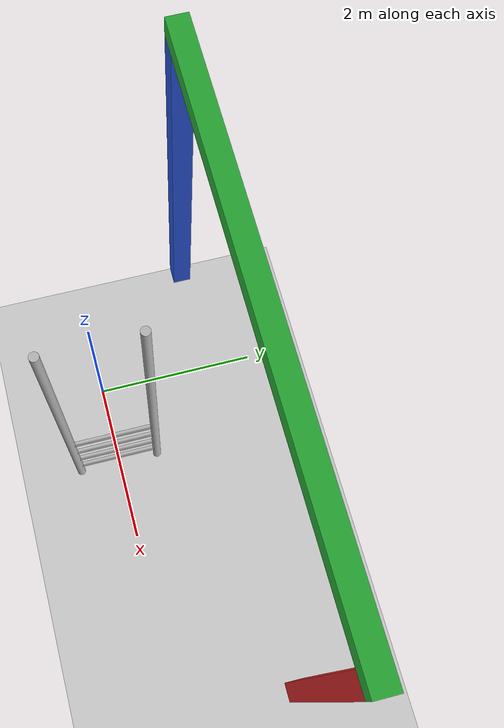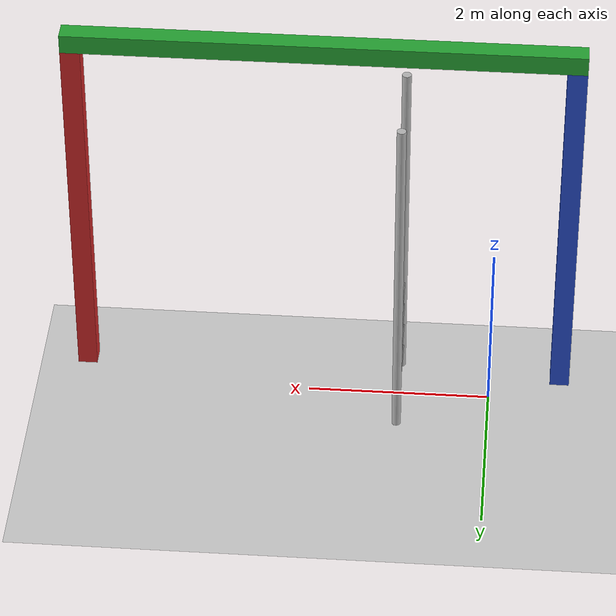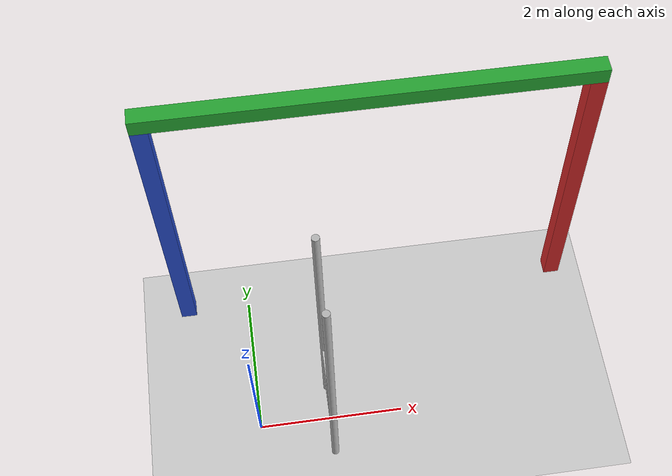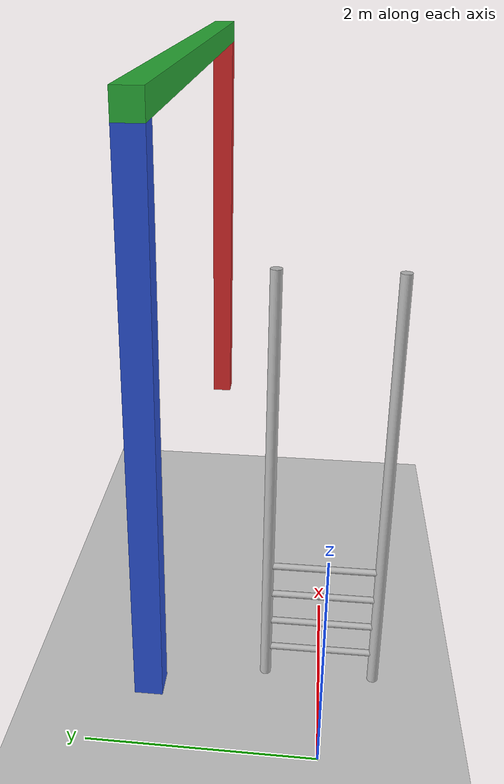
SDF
<sdf version="1.4">
 <world name="qual_task_4">
  <physics type="ode">
   <gravity>0 0 -9.81</gravity>
   <ode>
    <solver><type>quick</type><iters>50</iters><sor>1.4</sor></solver>
    <constraints>
     <cfm>0.0</cfm>
     <erp>0.2</erp>
     <contact_max_correcting_vel>100.0</contact_max_correcting_vel>
     <contact_surface_layer>0.0</contact_surface_layer>
    </constraints>
   </ode>
   <real_time_update_rate>1000</real_time_update_rate>
   <max_step_size>0.001</max_step_size>
  </physics>
  <scene><ambient>0.3 0.3 0.3 1.0</ambient></scene>
  <light type="directional" name="sun">
   <pose>0 0 100 0 0 0</pose>
   <diffuse>0.9 0.9 0.9 1</diffuse>
   <specular>0.1 0.1 0.1 1</specular>
   <attenuation>
    <range>1000</range>
    <constant>0.9</constant>
    <linear>0.01</linear>
    <quadratic>0.001</quadratic>
   </attenuation>
   <direction>-0.2 0.0 -1.0</direction>
  </light>
  <light type="point" name="light_bulb">
   <cast_shadows>false</cast_shadows>
   <pose>7.5 -7 5 0 0 0</pose>
   <diffuse>0.5 0.5 0.5 1</diffuse>
   <specular>0.0 0.0 0.0 1</specular>
   <attenuation>
    <range>80</range>
    <constant>0.9</constant>
    <linear>0.01</linear>
    <quadratic>0.001</quadratic>
   </attenuation>
  </light>
  <include><uri>model://ground_plane</uri></include>
  <include><uri>model://ladder</uri><pose>1.0 0 0 0 0 0</pose></include>
  <include><name>gate_0</name><uri>model://gate</uri><pose>1.75 1.25 3.4 0 0 1.57078</pose></include>
  <plugin filename="libVRCPlugin.so" name="vrc_plugin">
   <atlas><model_name>atlas</model_name><pin_link>utorso</pin_link></atlas>
   <drc_vehicle><model_name>golf_cart</model_name><seat_link>chassis</seat_link></drc_vehicle>
   <drc_fire_hose>
    <fire_hose_model>fire_hose</fire_hose_model>
    <coupling_link>coupling</coupling_link>
    <standpipe_model>standpipe</standpipe_model>
    <spout_link>standpipe</spout_link>
    <thread_pitch>-1000</thread_pitch>
    <coupling_relative_pose>1.17038e-05 -0.125623 0.35 -0.0412152 -1.57078 1.61199</coupling_relative_pose>
   </drc_fire_hose>
  </plugin>
  <plugin filename="libVRCScoringPlugin.so" name="vrc_scoring">
   <score_file>/tmp/qual_task_4/score.log</score_file>
  </plugin>
 </world>
</sdf>

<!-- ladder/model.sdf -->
<sdf version="1.3">
  <model name="ladder">
    <pose>0 0 0 0 0 0</pose>
    <static>true</static>
    <link name="link">

      <collision name="right_upright_collision">
        <pose>0 0.5 2.0 0 0 0 </pose>
        <geometry>
          <cylinder>
            <radius>0.05</radius>
            <length>4.0</length>
          </cylinder>
        </geometry>
      </collision>

      <visual name="right_upright_visual">
        <pose>0 0.5 2.0 0 0 0 </pose>
        <geometry>
          <cylinder>
            <radius>0.05</radius>
            <length>4.0</length>
          </cylinder>
        </geometry>
      </visual>

      <collision name="left_upright_collision">
        <pose>0 -0.5 2.0 0 0 0 </pose>
        <geometry>
          <cylinder>
            <radius>0.05</radius>
            <length>4.0</length>
          </cylinder>
        </geometry>
      </collision>

      <visual name="left_upright_visual">
        <pose>0 -0.5 2.0 0 0 0 </pose>
        <geometry>
          <cylinder>
            <radius>0.05</radius>
            <length>4.0</length>
          </cylinder>
        </geometry>
      </visual>

      <collision name="rung_1_collision">
        <pose>0 0 0.3 1.5707 0 0 </pose>
        <geometry>
          <cylinder>
            <radius>0.03</radius>
            <length>1.0</length>
          </cylinder>
        </geometry>
      </collision>

      <visual name="rung_1_visual">
        <pose>0 0 0.3 1.5707 0 0 </pose>
        <geometry>
          <cylinder>
            <radius>0.03</radius>
            <length>1.0</length>
          </cylinder>
        </geometry>
      </visual>

      <collision name="rung_2_collision">
        <pose>0 0 0.6 1.5707 0 0 </pose>
        <geometry>
          <cylinder>
            <radius>0.03</radius>
            <length>1.0</length>
          </cylinder>
        </geometry>
      </collision>

      <visual name="rung_2_visual">
        <pose>0 0 0.6 1.5707 0 0 </pose>
        <geometry>
          <cylinder>
            <radius>0.03</radius>
            <length>1.0</length>
          </cylinder>
        </geometry>
      </visual>

      <collision name="rung_3_collision">
        <pose>0 0 0.9 1.5707 0 0 </pose>
        <geometry>
          <cylinder>
            <radius>0.03</radius>
            <length>1.0</length>
          </cylinder>
        </geometry>
      </collision>

      <visual name="rung_3_visual">
        <pose>0 0 0.9 1.5707 0 0 </pose>
        <geometry>
          <cylinder>
            <radius>0.03</radius>
            <length>1.0</length>
          </cylinder>
        </geometry>
      </visual>

      <collision name="rung_4_collision">
        <pose>0 0 1.2 1.5707 0 0 </pose>
        <geometry>
          <cylinder>
            <radius>0.03</radius>
            <length>1.0</length>
          </cylinder>
        </geometry>
      </collision>

      <visual name="rung_4_visual">
        <pose>0 0 1.2 1.5707 0 0 </pose>
        <geometry>
          <cylinder>
            <radius>0.03</radius>
            <length>1.0</length>
          </cylinder>
        </geometry>
      </visual>

    </link>
  </model>
</sdf>

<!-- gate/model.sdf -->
<sdf version="1.4">
  <model name="gate">
    <static>true</static>
    <pose>0 0 2.0 0 0 0</pose>
    <link name="link">
      <collision name="right_collision">
        <pose>0 -2.5 0 0 0 0</pose>
        <geometry>
          <box>
            <size>0.2 0.2 4.0</size>
          </box>
        </geometry>
      </collision>
      <visual name="right_visual">
        <pose>0 -2.5 0 0 0 0</pose>
        <geometry>
          <box>
            <size>0.2 0.2 4.0</size>
          </box>
        </geometry>
        <material>
          <script>
            <uri>model://gate/materials/scripts/gate.material</uri>
            <uri>model://gate/materials/textures</uri>
            <name>vrc/red_gate</name>
          </script>
        </material>
      </visual>

      <collision name="left_collision">
        <pose>0 2.5 0 0 0 0</pose>
        <geometry>
          <box>
            <size>0.2 0.2 4.0</size>
          </box>
        </geometry>
      </collision>
      <visual name="left_visual">
        <pose>0 2.5 0 0 0 0</pose>
        <geometry>
          <box>
            <size>0.2 0.2 4.0</size>
          </box>
        </geometry>
        <material>
          <script>
            <uri>model://gate/materials/scripts/gate.material</uri>
            <uri>model://gate/materials/textures</uri>
            <name>vrc/blue_gate</name>
          </script>
        </material>
      </visual>

      <collision name="top_collision">
        <pose>0 0 2.1 0 0 0</pose>
        <geometry>
          <box>
            <size>0.2 5.2 0.2</size>
          </box>
        </geometry>
      </collision>
      <visual name="top_visual">
        <pose>0 0 2.1 0 0 0</pose>
        <geometry>
          <box>
            <size>0.2 5.2 0.2</size>
          </box>
        </geometry>
        <material>
          <script>
            <uri>model://gate/materials/scripts/gate.material</uri>
            <uri>model://gate/materials/textures</uri>
            <name>vrc/green_gate</name>
          </script>
        </material>
      </visual>
    </link>
  </model>
</sdf>
